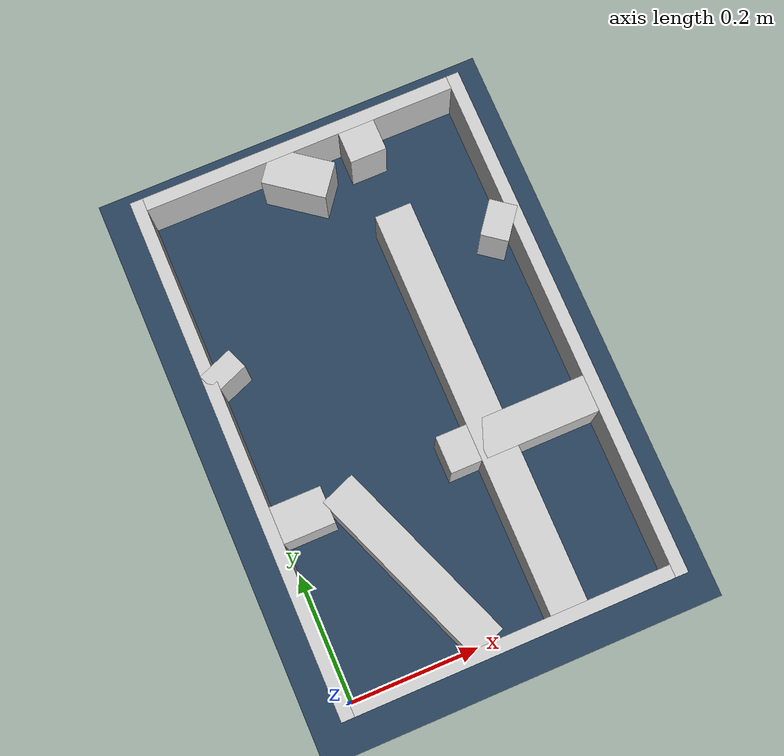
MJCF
<?xml version="1.0" ?>
<mujoco model="generated_real_template">
  <compiler angle="degree"/>
  <option timestep="0.002" integrator="implicitfast" iterations="100" cone="elliptic"/>
  <default>
    <geom density="1"/>
  </default>
  <asset>
    <texture builtin="gradient" height="3072" rgb1="0.3 0.5 0.7" rgb2="0 0 0" type="skybox" width="512"/>
    <texture builtin="checker" height="300" mark="edge" markrgb="0.8 0.8 0.8" name="groundplane" rgb1="0.2 0.3 0.4" rgb2="0.1 0.2 0.3" type="2d" width="300"/>
    <material name="groundplane" reflectance="0.2" texrepeat="5 5" texture="groundplane" texuniform="true"/>
  </asset>
  <worldbody>
    <light dir="0 0 -1" directional="true" pos="0 0 1.5"/>
    <geom name="floor" type="plane" condim="4" friction="0.5 0.005 0.001" material="groundplane" size="0 0 0.05"/>
    <body name="walls">
      <geom name="wall_boundary_left" type="box" condim="4" friction="1.0 0.005 0.0001" rgba="0.8 0.8 0.8 1" pos="-0.010000 0.387500 0.050000" euler="0 0 0.000000" size="0.010000 0.407500 0.050000"/>
      <geom name="wall_boundary_right" type="box" condim="4" friction="1.0 0.005 0.0001" rgba="0.8 0.8 0.8 1" pos="0.500000 0.387500 0.050000" euler="0 0 0.000000" size="0.010000 0.407500 0.050000"/>
      <geom name="wall_boundary_bottom" type="box" condim="4" friction="1.0 0.005 0.0001" rgba="0.8 0.8 0.8 1" pos="0.245000 -0.010000 0.050000" euler="0 0 0.000000" size="0.245000 0.010000 0.050000"/>
      <geom name="wall_boundary_top" type="box" condim="4" friction="1.0 0.005 0.0001" rgba="0.8 0.8 0.8 1" pos="0.245000 0.785000 0.050000" euler="0 0 0.000000" size="0.245000 0.010000 0.050000"/>
      <geom name="wall_inner_1_1" type="box" condim="4" friction="1.0 0.005 0.0001" rgba="0.8 0.8 0.8 1" pos="0.334414 0.316764 0.050000" euler="0 0 90.000000" size="0.316764 0.028500 0.050000"/>
      <geom name="wall_inner_1_2" type="box" condim="4" friction="1.0 0.005 0.0001" rgba="0.8 0.8 0.8 1" pos="0.334414 0.750444 0.050000" euler="0 0 90.000000" size="0.024556 0.028500 0.050000"/>
      <geom name="wall_inner_2_1" type="box" condim="4" friction="1.0 0.005 0.0001" rgba="0.8 0.8 0.8 1" pos="0.039547 0.267825 0.050000" euler="0 0 0.000000" size="0.039547 0.028500 0.050000"/>
      <geom name="wall_inner_2_2" type="box" condim="4" friction="1.0 0.005 0.0001" rgba="0.8 0.8 0.8 1" pos="0.373932 0.267825 0.050000" euler="0 0 0.000000" size="0.116068 0.028500 0.050000"/>
      <geom name="wall_inner_3_1" type="box" condim="4" friction="1.0 0.005 0.0001" rgba="0.8 0.8 0.8 1" pos="0.155623 0.141633 0.050000" euler="0 0 111.428560" size="0.152151 0.028500 0.050000"/>
      <geom name="wall_inner_3_2" type="box" condim="4" friction="1.0 0.005 0.0001" rgba="0.8 0.8 0.8 1" pos="0.012807 0.505523 0.050000" euler="0 0 111.428560" size="0.017178 0.028500 0.050000"/>
      <geom name="wall_inner_4_1" type="box" condim="4" friction="1.0 0.005 0.0001" rgba="0.8 0.8 0.8 1" pos="0.227966 0.742432 0.050000" euler="0 0 -37.002845" size="0.049525 0.028500 0.050000"/>
      <geom name="wall_inner_4_2" type="box" condim="4" friction="1.0 0.005 0.0001" rgba="0.8 0.8 0.8 1" pos="0.472814 0.557907 0.050000" euler="0 0 -37.002845" size="0.021520 0.028500 0.050000"/>
    </body>
  </worldbody>
</mujoco>
